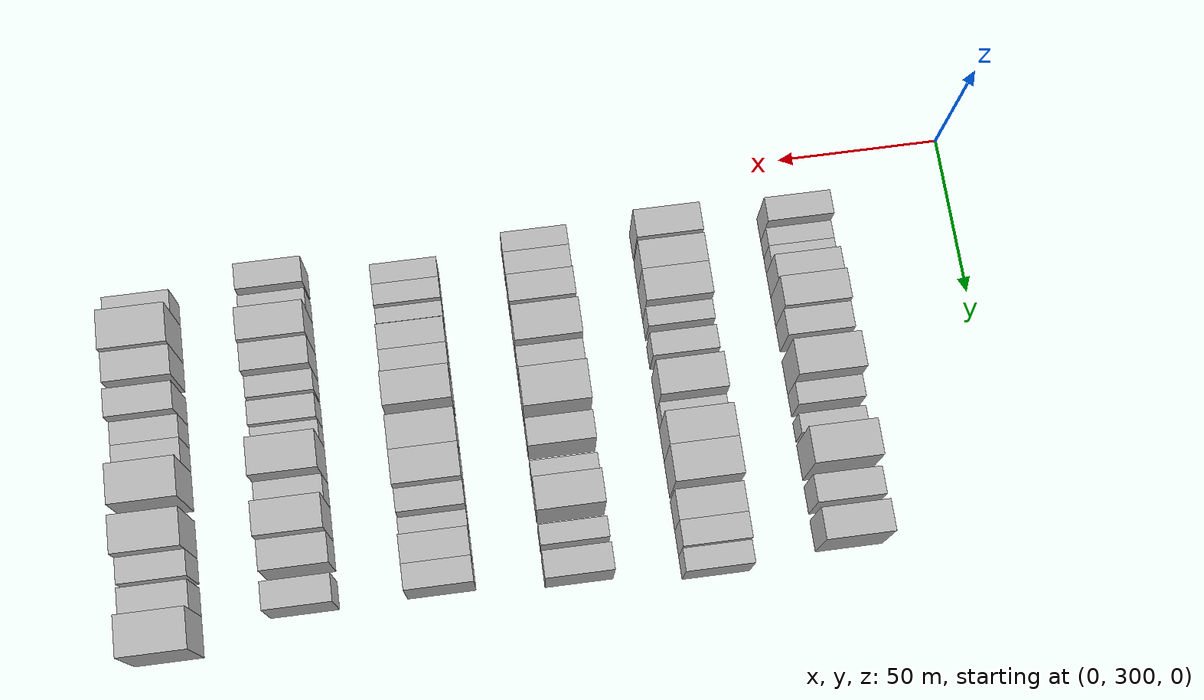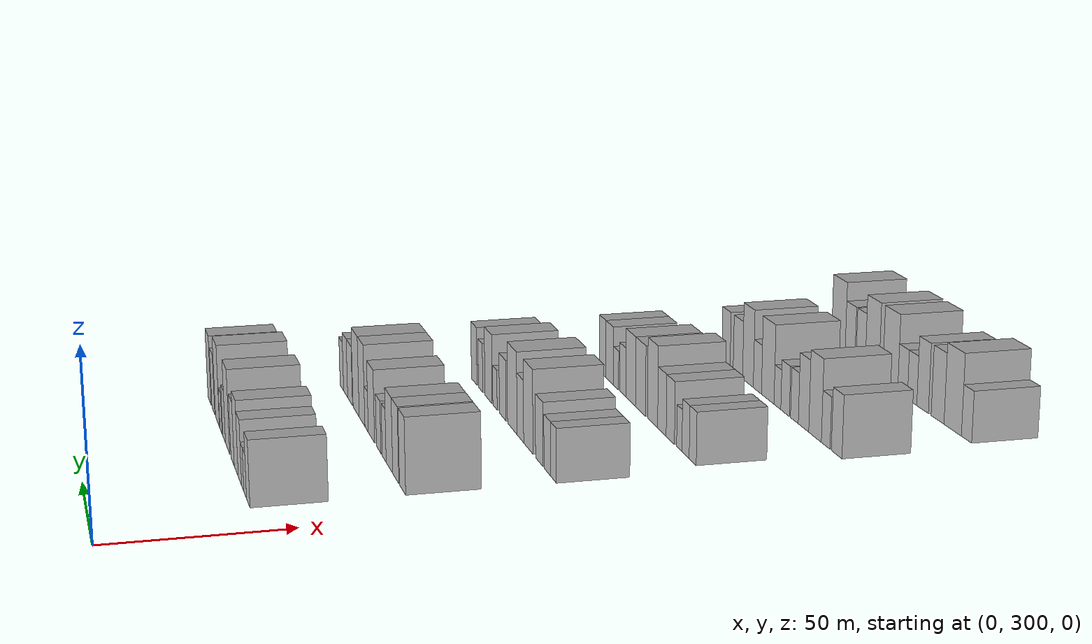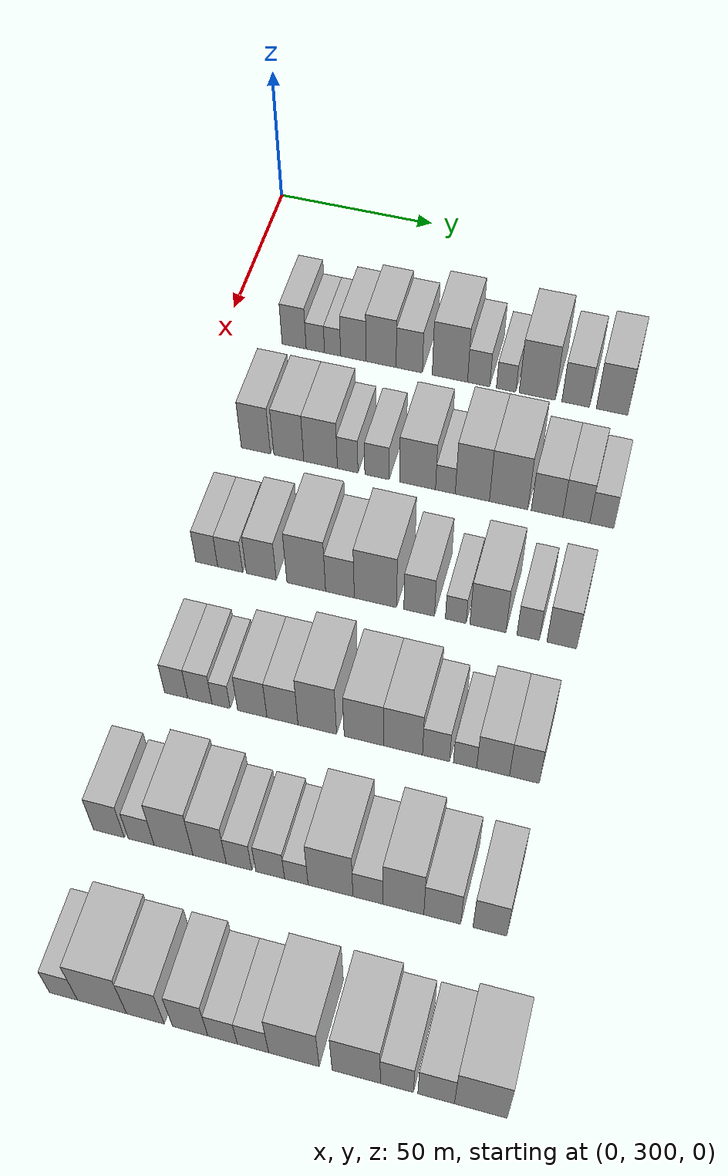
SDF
<sdf version="1.6">
 <world name="default">
  <model name="building_114">
   <static>1</static>
   <pose>50.0000 322.1395 0 0.000000 0.000000 0.000000</pose>
   <link name="link">
    <pose>0 0 9.00 0 0 0</pose>
    <collision name="collision"><geometry><box><size>20.0000 7.5076 18.0000</size></box></geometry></collision>
    <visual name="visual">
     <cast_shadows>0</cast_shadows>
     <geometry><box><size>20.0000 7.5076 18.0000</size></box></geometry>
     <material>
      <script>
       <uri>model://HANNAS_wall/materials/scripts</uri>
       <uri>model://HANNAS_wall/materials/textures</uri>
       <name>vrc/HANNAS_wall</name>
      </script>
     </material>
    </visual>
   </link>
  </model>
  <model name="building_115">
   <static>1</static>
   <pose>50.0000 328.7523 0 0.000000 0.000000 0.000000</pose>
   <link name="link">
    <pose>0 0 6.00 0 0 0</pose>
    <collision name="collision"><geometry><box><size>20.0000 5.7179 12.0000</size></box></geometry></collision>
    <visual name="visual">
     <cast_shadows>0</cast_shadows>
     <geometry><box><size>20.0000 5.7179 12.0000</size></box></geometry>
     <material>
      <script>
       <uri>model://HANNAS_wall/materials/scripts</uri>
       <uri>model://HANNAS_wall/materials/textures</uri>
       <name>vrc/HANNAS_wall</name>
      </script>
     </material>
    </visual>
   </link>
  </model>
  <model name="building_116">
   <static>1</static>
   <pose>50.0000 334.1139 0 0.000000 0.000000 0.000000</pose>
   <link name="link">
    <pose>0 0 6.00 0 0 0</pose>
    <collision name="collision"><geometry><box><size>20.0000 5.0053 12.0000</size></box></geometry></collision>
    <visual name="visual">
     <cast_shadows>0</cast_shadows>
     <geometry><box><size>20.0000 5.0053 12.0000</size></box></geometry>
     <material>
      <script>
       <uri>model://HANNAS_wall/materials/scripts</uri>
       <uri>model://HANNAS_wall/materials/textures</uri>
       <name>vrc/HANNAS_wall</name>
      </script>
     </material>
    </visual>
   </link>
  </model>
  <model name="building_117">
   <static>1</static>
   <pose>50.0000 340.5503 0 0.000000 0.000000 0.000000</pose>
   <link name="link">
    <pose>0 0 9.00 0 0 0</pose>
    <collision name="collision"><geometry><box><size>20.0000 7.8675 18.0000</size></box></geometry></collision>
    <visual name="visual">
     <cast_shadows>0</cast_shadows>
     <geometry><box><size>20.0000 7.8675 18.0000</size></box></geometry>
     <material>
      <script>
       <uri>model://HANNAS_wall/materials/scripts</uri>
       <uri>model://HANNAS_wall/materials/textures</uri>
       <name>vrc/HANNAS_wall</name>
      </script>
     </material>
    </visual>
   </link>
  </model>
  <model name="building_118">
   <static>1</static>
   <pose>50.0000 349.1118 0 0.000000 0.000000 0.000000</pose>
   <link name="link">
    <pose>0 0 10.50 0 0 0</pose>
    <collision name="collision"><geometry><box><size>20.0000 9.2555 21.0000</size></box></geometry></collision>
    <visual name="visual">
     <cast_shadows>0</cast_shadows>
     <geometry><box><size>20.0000 9.2555 21.0000</size></box></geometry>
     <material>
      <script>
       <uri>model://HANNAS_wall/materials/scripts</uri>
       <uri>model://HANNAS_wall/materials/textures</uri>
       <name>vrc/HANNAS_wall</name>
      </script>
     </material>
    </visual>
   </link>
  </model>
  <model name="building_119">
   <static>1</static>
   <pose>50.0000 357.7633 0 0.000000 0.000000 0.000000</pose>
   <link name="link">
    <pose>0 0 9.00 0 0 0</pose>
    <collision name="collision"><geometry><box><size>20.0000 8.0475 18.0000</size></box></geometry></collision>
    <visual name="visual">
     <cast_shadows>0</cast_shadows>
     <geometry><box><size>20.0000 8.0475 18.0000</size></box></geometry>
     <material>
      <script>
       <uri>model://HANNAS_wall/materials/scripts</uri>
       <uri>model://HANNAS_wall/materials/textures</uri>
       <name>vrc/HANNAS_wall</name>
      </script>
     </material>
    </visual>
   </link>
  </model>
  <model name="building_120">
   <static>1</static>
   <pose>50.0000 370.1448 0 0.000000 0.000000 0.000000</pose>
   <link name="link">
    <pose>0 0 12.00 0 0 0</pose>
    <collision name="collision"><geometry><box><size>20.0000 10.7154 24.0000</size></box></geometry></collision>
    <visual name="visual">
     <cast_shadows>0</cast_shadows>
     <geometry><box><size>20.0000 10.7154 24.0000</size></box></geometry>
     <material>
      <script>
       <uri>model://HANNAS_wall/materials/scripts</uri>
       <uri>model://HANNAS_wall/materials/textures</uri>
       <name>vrc/HANNAS_wall</name>
      </script>
     </material>
    </visual>
   </link>
  </model>
  <model name="building_121">
   <static>1</static>
   <pose>50.0000 378.8619 0 0.000000 0.000000 0.000000</pose>
   <link name="link">
    <pose>0 0 7.50 0 0 0</pose>
    <collision name="collision"><geometry><box><size>20.0000 6.7188 15.0000</size></box></geometry></collision>
    <visual name="visual">
     <cast_shadows>0</cast_shadows>
     <geometry><box><size>20.0000 6.7188 15.0000</size></box></geometry>
     <material>
      <script>
       <uri>model://HANNAS_wall/materials/scripts</uri>
       <uri>model://HANNAS_wall/materials/textures</uri>
       <name>vrc/HANNAS_wall</name>
      </script>
     </material>
    </visual>
   </link>
  </model>
  <model name="building_122">
   <static>1</static>
   <pose>50.0000 387.1422 0 0.000000 0.000000 0.000000</pose>
   <link name="link">
    <pose>0 0 6.00 0 0 0</pose>
    <collision name="collision"><geometry><box><size>20.0000 5.8417 12.0000</size></box></geometry></collision>
    <visual name="visual">
     <cast_shadows>0</cast_shadows>
     <geometry><box><size>20.0000 5.8417 12.0000</size></box></geometry>
     <material>
      <script>
       <uri>model://HANNAS_wall/materials/scripts</uri>
       <uri>model://HANNAS_wall/materials/textures</uri>
       <name>vrc/HANNAS_wall</name>
      </script>
     </material>
    </visual>
   </link>
  </model>
  <model name="building_123">
   <static>1</static>
   <pose>50.0000 396.4474 0 0.000000 0.000000 0.000000</pose>
   <link name="link">
    <pose>0 0 12.00 0 0 0</pose>
    <collision name="collision"><geometry><box><size>20.0000 10.7687 24.0000</size></box></geometry></collision>
    <visual name="visual">
     <cast_shadows>0</cast_shadows>
     <geometry><box><size>20.0000 10.7687 24.0000</size></box></geometry>
     <material>
      <script>
       <uri>model://HANNAS_wall/materials/scripts</uri>
       <uri>model://HANNAS_wall/materials/textures</uri>
       <name>vrc/HANNAS_wall</name>
      </script>
     </material>
    </visual>
   </link>
  </model>
  <model name="building_124">
   <static>1</static>
   <pose>50.0000 407.9338 0 0.000000 0.000000 0.000000</pose>
   <link name="link">
    <pose>0 0 9.00 0 0 0</pose>
    <collision name="collision"><geometry><box><size>20.0000 8.2042 18.0000</size></box></geometry></collision>
    <visual name="visual">
     <cast_shadows>0</cast_shadows>
     <geometry><box><size>20.0000 8.2042 18.0000</size></box></geometry>
     <material>
      <script>
       <uri>model://HANNAS_wall/materials/scripts</uri>
       <uri>model://HANNAS_wall/materials/textures</uri>
       <name>vrc/HANNAS_wall</name>
      </script>
     </material>
    </visual>
   </link>
  </model>
  <model name="building_125">
   <static>1</static>
   <pose>50.0000 418.6922 0 0.000000 0.000000 0.000000</pose>
   <link name="link">
    <pose>0 0 10.50 0 0 0</pose>
    <collision name="collision"><geometry><box><size>20.0000 9.3125 21.0000</size></box></geometry></collision>
    <visual name="visual">
     <cast_shadows>0</cast_shadows>
     <geometry><box><size>20.0000 9.3125 21.0000</size></box></geometry>
     <material>
      <script>
       <uri>model://HANNAS_wall/materials/scripts</uri>
       <uri>model://HANNAS_wall/materials/textures</uri>
       <name>vrc/HANNAS_wall</name>
      </script>
     </material>
    </visual>
   </link>
  </model>
  <model name="building_244">
   <static>1</static>
   <pose>90.0000 322.7010 0 0.000000 0.000000 0.000000</pose>
   <link name="link">
    <pose>0 0 10.50 0 0 0</pose>
    <collision name="collision"><geometry><box><size>20.0000 8.7238 21.0000</size></box></geometry></collision>
    <visual name="visual">
     <cast_shadows>0</cast_shadows>
     <geometry><box><size>20.0000 8.7238 21.0000</size></box></geometry>
     <material>
      <script>
       <uri>model://HANNAS_wall/materials/scripts</uri>
       <uri>model://HANNAS_wall/materials/textures</uri>
       <name>vrc/HANNAS_wall</name>
      </script>
     </material>
    </visual>
   </link>
  </model>
  <model name="building_245">
   <static>1</static>
   <pose>90.0000 332.5157 0 0.000000 0.000000 0.000000</pose>
   <link name="link">
    <pose>0 0 10.50 0 0 0</pose>
    <collision name="collision"><geometry><box><size>20.0000 8.9057 21.0000</size></box></geometry></collision>
    <visual name="visual">
     <cast_shadows>0</cast_shadows>
     <geometry><box><size>20.0000 8.9057 21.0000</size></box></geometry>
     <material>
      <script>
       <uri>model://HANNAS_wall/materials/scripts</uri>
       <uri>model://HANNAS_wall/materials/textures</uri>
       <name>vrc/HANNAS_wall</name>
      </script>
     </material>
    </visual>
   </link>
  </model>
  <model name="building_246">
   <static>1</static>
   <pose>90.0000 341.9461 0 0.000000 0.000000 0.000000</pose>
   <link name="link">
    <pose>0 0 10.50 0 0 0</pose>
    <collision name="collision"><geometry><box><size>20.0000 9.9551 21.0000</size></box></geometry></collision>
    <visual name="visual">
     <cast_shadows>0</cast_shadows>
     <geometry><box><size>20.0000 9.9551 21.0000</size></box></geometry>
     <material>
      <script>
       <uri>model://HANNAS_wall/materials/scripts</uri>
       <uri>model://HANNAS_wall/materials/textures</uri>
       <name>vrc/HANNAS_wall</name>
      </script>
     </material>
    </visual>
   </link>
  </model>
  <model name="building_247">
   <static>1</static>
   <pose>90.0000 349.9543 0 0.000000 0.000000 0.000000</pose>
   <link name="link">
    <pose>0 0 7.50 0 0 0</pose>
    <collision name="collision"><geometry><box><size>20.0000 6.0612 15.0000</size></box></geometry></collision>
    <visual name="visual">
     <cast_shadows>0</cast_shadows>
     <geometry><box><size>20.0000 6.0612 15.0000</size></box></geometry>
     <material>
      <script>
       <uri>model://HANNAS_wall/materials/scripts</uri>
       <uri>model://HANNAS_wall/materials/textures</uri>
       <name>vrc/HANNAS_wall</name>
      </script>
     </material>
    </visual>
   </link>
  </model>
  <model name="building_248">
   <static>1</static>
   <pose>90.0000 358.5552 0 0.000000 0.000000 0.000000</pose>
   <link name="link">
    <pose>0 0 7.50 0 0 0</pose>
    <collision name="collision"><geometry><box><size>20.0000 7.1408 15.0000</size></box></geometry></collision>
    <visual name="visual">
     <cast_shadows>0</cast_shadows>
     <geometry><box><size>20.0000 7.1408 15.0000</size></box></geometry>
     <material>
      <script>
       <uri>model://HANNAS_wall/materials/scripts</uri>
       <uri>model://HANNAS_wall/materials/textures</uri>
       <name>vrc/HANNAS_wall</name>
      </script>
     </material>
    </visual>
   </link>
  </model>
  <model name="building_249">
   <static>1</static>
   <pose>90.0000 370.3580 0 0.000000 0.000000 0.000000</pose>
   <link name="link">
    <pose>0 0 10.50 0 0 0</pose>
    <collision name="collision"><geometry><box><size>20.0000 10.4647 21.0000</size></box></geometry></collision>
    <visual name="visual">
     <cast_shadows>0</cast_shadows>
     <geometry><box><size>20.0000 10.4647 21.0000</size></box></geometry>
     <material>
      <script>
       <uri>model://HANNAS_wall/materials/scripts</uri>
       <uri>model://HANNAS_wall/materials/textures</uri>
       <name>vrc/HANNAS_wall</name>
      </script>
     </material>
    </visual>
   </link>
  </model>
  <model name="building_250">
   <static>1</static>
   <pose>90.0000 378.4377 0 0.000000 0.000000 0.000000</pose>
   <link name="link">
    <pose>0 0 6.00 0 0 0</pose>
    <collision name="collision"><geometry><box><size>20.0000 5.6945 12.0000</size></box></geometry></collision>
    <visual name="visual">
     <cast_shadows>0</cast_shadows>
     <geometry><box><size>20.0000 5.6945 12.0000</size></box></geometry>
     <material>
      <script>
       <uri>model://HANNAS_wall/materials/scripts</uri>
       <uri>model://HANNAS_wall/materials/textures</uri>
       <name>vrc/HANNAS_wall</name>
      </script>
     </material>
    </visual>
   </link>
  </model>
  <model name="building_251">
   <static>1</static>
   <pose>90.0000 386.1992 0 0.000000 0.000000 0.000000</pose>
   <link name="link">
    <pose>0 0 12.00 0 0 0</pose>
    <collision name="collision"><geometry><box><size>20.0000 9.8286 24.0000</size></box></geometry></collision>
    <visual name="visual">
     <cast_shadows>0</cast_shadows>
     <geometry><box><size>20.0000 9.8286 24.0000</size></box></geometry>
     <material>
      <script>
       <uri>model://HANNAS_wall/materials/scripts</uri>
       <uri>model://HANNAS_wall/materials/textures</uri>
       <name>vrc/HANNAS_wall</name>
      </script>
     </material>
    </visual>
   </link>
  </model>
  <model name="building_252">
   <static>1</static>
   <pose>90.0000 396.5845 0 0.000000 0.000000 0.000000</pose>
   <link name="link">
    <pose>0 0 12.00 0 0 0</pose>
    <collision name="collision"><geometry><box><size>20.0000 10.9419 24.0000</size></box></geometry></collision>
    <visual name="visual">
     <cast_shadows>0</cast_shadows>
     <geometry><box><size>20.0000 10.9419 24.0000</size></box></geometry>
     <material>
      <script>
       <uri>model://HANNAS_wall/materials/scripts</uri>
       <uri>model://HANNAS_wall/materials/textures</uri>
       <name>vrc/HANNAS_wall</name>
      </script>
     </material>
    </visual>
   </link>
  </model>
  <model name="building_253">
   <static>1</static>
   <pose>90.0000 407.5136 0 0.000000 0.000000 0.000000</pose>
   <link name="link">
    <pose>0 0 9.00 0 0 0</pose>
    <collision name="collision"><geometry><box><size>20.0000 8.9164 18.0000</size></box></geometry></collision>
    <visual name="visual">
     <cast_shadows>0</cast_shadows>
     <geometry><box><size>20.0000 8.9164 18.0000</size></box></geometry>
     <material>
      <script>
       <uri>model://HANNAS_wall/materials/scripts</uri>
       <uri>model://HANNAS_wall/materials/textures</uri>
       <name>vrc/HANNAS_wall</name>
      </script>
     </material>
    </visual>
   </link>
  </model>
  <model name="building_254">
   <static>1</static>
   <pose>90.0000 415.7774 0 0.000000 0.000000 0.000000</pose>
   <link name="link">
    <pose>0 0 9.00 0 0 0</pose>
    <collision name="collision"><geometry><box><size>20.0000 7.6111 18.0000</size></box></geometry></collision>
    <visual name="visual">
     <cast_shadows>0</cast_shadows>
     <geometry><box><size>20.0000 7.6111 18.0000</size></box></geometry>
     <material>
      <script>
       <uri>model://HANNAS_wall/materials/scripts</uri>
       <uri>model://HANNAS_wall/materials/textures</uri>
       <name>vrc/HANNAS_wall</name>
      </script>
     </material>
    </visual>
   </link>
  </model>
  <model name="building_255">
   <static>1</static>
   <pose>90.0000 422.9607 0 0.000000 0.000000 0.000000</pose>
   <link name="link">
    <pose>0 0 7.50 0 0 0</pose>
    <collision name="collision"><geometry><box><size>20.0000 6.7555 15.0000</size></box></geometry></collision>
    <visual name="visual">
     <cast_shadows>0</cast_shadows>
     <geometry><box><size>20.0000 6.7555 15.0000</size></box></geometry>
     <material>
      <script>
       <uri>model://HANNAS_wall/materials/scripts</uri>
       <uri>model://HANNAS_wall/materials/textures</uri>
       <name>vrc/HANNAS_wall</name>
      </script>
     </material>
    </visual>
   </link>
  </model>
  <model name="building_384">
   <static>1</static>
   <pose>130.0000 321.2681 0 0.000000 0.000000 0.000000</pose>
   <link name="link">
    <pose>0 0 7.50 0 0 0</pose>
    <collision name="collision"><geometry><box><size>20.0000 6.2877 15.0000</size></box></geometry></collision>
    <visual name="visual">
     <cast_shadows>0</cast_shadows>
     <geometry><box><size>20.0000 6.2877 15.0000</size></box></geometry>
     <material>
      <script>
       <uri>model://HANNAS_wall/materials/scripts</uri>
       <uri>model://HANNAS_wall/materials/textures</uri>
       <name>vrc/HANNAS_wall</name>
      </script>
     </material>
    </visual>
   </link>
  </model>
  <model name="building_385">
   <static>1</static>
   <pose>130.0000 327.9894 0 0.000000 0.000000 0.000000</pose>
   <link name="link">
    <pose>0 0 7.50 0 0 0</pose>
    <collision name="collision"><geometry><box><size>20.0000 7.1549 15.0000</size></box></geometry></collision>
    <visual name="visual">
     <cast_shadows>0</cast_shadows>
     <geometry><box><size>20.0000 7.1549 15.0000</size></box></geometry>
     <material>
      <script>
       <uri>model://HANNAS_wall/materials/scripts</uri>
       <uri>model://HANNAS_wall/materials/textures</uri>
       <name>vrc/HANNAS_wall</name>
      </script>
     </material>
    </visual>
   </link>
  </model>
  <model name="building_386">
   <static>1</static>
   <pose>130.0000 336.8217 0 0.000000 0.000000 0.000000</pose>
   <link name="link">
    <pose>0 0 9.00 0 0 0</pose>
    <collision name="collision"><geometry><box><size>20.0000 8.5096 18.0000</size></box></geometry></collision>
    <visual name="visual">
     <cast_shadows>0</cast_shadows>
     <geometry><box><size>20.0000 8.5096 18.0000</size></box></geometry>
     <material>
      <script>
       <uri>model://HANNAS_wall/materials/scripts</uri>
       <uri>model://HANNAS_wall/materials/textures</uri>
       <name>vrc/HANNAS_wall</name>
      </script>
     </material>
    </visual>
   </link>
  </model>
  <model name="building_387">
   <static>1</static>
   <pose>130.0000 349.5082 0 0.000000 0.000000 0.000000</pose>
   <link name="link">
    <pose>0 0 12.00 0 0 0</pose>
    <collision name="collision"><geometry><box><size>20.0000 10.8634 24.0000</size></box></geometry></collision>
    <visual name="visual">
     <cast_shadows>0</cast_shadows>
     <geometry><box><size>20.0000 10.8634 24.0000</size></box></geometry>
     <material>
      <script>
       <uri>model://HANNAS_wall/materials/scripts</uri>
       <uri>model://HANNAS_wall/materials/textures</uri>
       <name>vrc/HANNAS_wall</name>
      </script>
     </material>
    </visual>
   </link>
  </model>
  <model name="building_388">
   <static>1</static>
   <pose>130.0000 358.9549 0 0.000000 0.000000 0.000000</pose>
   <link name="link">
    <pose>0 0 9.00 0 0 0</pose>
    <collision name="collision"><geometry><box><size>20.0000 8.0301 18.0000</size></box></geometry></collision>
    <visual name="visual">
     <cast_shadows>0</cast_shadows>
     <geometry><box><size>20.0000 8.0301 18.0000</size></box></geometry>
     <material>
      <script>
       <uri>model://HANNAS_wall/materials/scripts</uri>
       <uri>model://HANNAS_wall/materials/textures</uri>
       <name>vrc/HANNAS_wall</name>
      </script>
     </material>
    </visual>
   </link>
  </model>
  <model name="building_389">
   <static>1</static>
   <pose>130.0000 368.8341 0 0.000000 0.000000 0.000000</pose>
   <link name="link">
    <pose>0 0 12.00 0 0 0</pose>
    <collision name="collision"><geometry><box><size>20.0000 11.7284 24.0000</size></box></geometry></collision>
    <visual name="visual">
     <cast_shadows>0</cast_shadows>
     <geometry><box><size>20.0000 11.7284 24.0000</size></box></geometry>
     <material>
      <script>
       <uri>model://HANNAS_wall/materials/scripts</uri>
       <uri>model://HANNAS_wall/materials/textures</uri>
       <name>vrc/HANNAS_wall</name>
      </script>
     </material>
    </visual>
   </link>
  </model>
  <model name="building_390">
   <static>1</static>
   <pose>130.0000 380.8993 0 0.000000 0.000000 0.000000</pose>
   <link name="link">
    <pose>0 0 9.00 0 0 0</pose>
    <collision name="collision"><geometry><box><size>20.0000 8.4019 18.0000</size></box></geometry></collision>
    <visual name="visual">
     <cast_shadows>0</cast_shadows>
     <geometry><box><size>20.0000 8.4019 18.0000</size></box></geometry>
     <material>
      <script>
       <uri>model://HANNAS_wall/materials/scripts</uri>
       <uri>model://HANNAS_wall/materials/textures</uri>
       <name>vrc/HANNAS_wall</name>
      </script>
     </material>
    </visual>
   </link>
  </model>
  <model name="building_391">
   <static>1</static>
   <pose>130.0000 390.9259 0 0.000000 0.000000 0.000000</pose>
   <link name="link">
    <pose>0 0 6.00 0 0 0</pose>
    <collision name="collision"><geometry><box><size>20.0000 5.6514 12.0000</size></box></geometry></collision>
    <visual name="visual">
     <cast_shadows>0</cast_shadows>
     <geometry><box><size>20.0000 5.6514 12.0000</size></box></geometry>
     <material>
      <script>
       <uri>model://HANNAS_wall/materials/scripts</uri>
       <uri>model://HANNAS_wall/materials/textures</uri>
       <name>vrc/HANNAS_wall</name>
      </script>
     </material>
    </visual>
   </link>
  </model>
  <model name="building_392">
   <static>1</static>
   <pose>130.0000 399.6508 0 0.000000 0.000000 0.000000</pose>
   <link name="link">
    <pose>0 0 10.50 0 0 0</pose>
    <collision name="collision"><geometry><box><size>20.0000 9.7984 21.0000</size></box></geometry></collision>
    <visual name="visual">
     <cast_shadows>0</cast_shadows>
     <geometry><box><size>20.0000 9.7984 21.0000</size></box></geometry>
     <material>
      <script>
       <uri>model://HANNAS_wall/materials/scripts</uri>
       <uri>model://HANNAS_wall/materials/textures</uri>
       <name>vrc/HANNAS_wall</name>
      </script>
     </material>
    </visual>
   </link>
  </model>
  <model name="building_393">
   <static>1</static>
   <pose>130.0000 410.5738 0 0.000000 0.000000 0.000000</pose>
   <link name="link">
    <pose>0 0 7.50 0 0 0</pose>
    <collision name="collision"><geometry><box><size>20.0000 6.0475 15.0000</size></box></geometry></collision>
    <visual name="visual">
     <cast_shadows>0</cast_shadows>
     <geometry><box><size>20.0000 6.0475 15.0000</size></box></geometry>
     <material>
      <script>
       <uri>model://HANNAS_wall/materials/scripts</uri>
       <uri>model://HANNAS_wall/materials/textures</uri>
       <name>vrc/HANNAS_wall</name>
      </script>
     </material>
    </visual>
   </link>
  </model>
  <model name="building_394">
   <static>1</static>
   <pose>130.0000 419.5885 0 0.000000 0.000000 0.000000</pose>
   <link name="link">
    <pose>0 0 9.00 0 0 0</pose>
    <collision name="collision"><geometry><box><size>20.0000 7.9820 18.0000</size></box></geometry></collision>
    <visual name="visual">
     <cast_shadows>0</cast_shadows>
     <geometry><box><size>20.0000 7.9820 18.0000</size></box></geometry>
     <material>
      <script>
       <uri>model://HANNAS_wall/materials/scripts</uri>
       <uri>model://HANNAS_wall/materials/textures</uri>
       <name>vrc/HANNAS_wall</name>
      </script>
     </material>
    </visual>
   </link>
  </model>
  <model name="building_526">
   <static>1</static>
   <pose>170.0000 326.3682 0 0.000000 0.000000 0.000000</pose>
   <link name="link">
    <pose>0 0 7.50 0 0 0</pose>
    <collision name="collision"><geometry><box><size>20.0000 6.2740 15.0000</size></box></geometry></collision>
    <visual name="visual">
     <cast_shadows>0</cast_shadows>
     <geometry><box><size>20.0000 6.2740 15.0000</size></box></geometry>
     <material>
      <script>
       <uri>model://HANNAS_wall/materials/scripts</uri>
       <uri>model://HANNAS_wall/materials/textures</uri>
       <name>vrc/HANNAS_wall</name>
      </script>
     </material>
    </visual>
   </link>
  </model>
  <model name="building_527">
   <static>1</static>
   <pose>170.0000 332.7920 0 0.000000 0.000000 0.000000</pose>
   <link name="link">
    <pose>0 0 7.50 0 0 0</pose>
    <collision name="collision"><geometry><box><size>20.0000 6.5738 15.0000</size></box></geometry></collision>
    <visual name="visual">
     <cast_shadows>0</cast_shadows>
     <geometry><box><size>20.0000 6.5738 15.0000</size></box></geometry>
     <material>
      <script>
       <uri>model://HANNAS_wall/materials/scripts</uri>
       <uri>model://HANNAS_wall/materials/textures</uri>
       <name>vrc/HANNAS_wall</name>
      </script>
     </material>
    </visual>
   </link>
  </model>
  <model name="building_528">
   <static>1</static>
   <pose>170.0000 338.5341 0 0.000000 0.000000 0.000000</pose>
   <link name="link">
    <pose>0 0 6.00 0 0 0</pose>
    <collision name="collision"><geometry><box><size>20.0000 4.9103 12.0000</size></box></geometry></collision>
    <visual name="visual">
     <cast_shadows>0</cast_shadows>
     <geometry><box><size>20.0000 4.9103 12.0000</size></box></geometry>
     <material>
      <script>
       <uri>model://HANNAS_wall/materials/scripts</uri>
       <uri>model://HANNAS_wall/materials/textures</uri>
       <name>vrc/HANNAS_wall</name>
      </script>
     </material>
    </visual>
   </link>
  </model>
  <model name="building_529">
   <static>1</static>
   <pose>170.0000 346.9237 0 0.000000 0.000000 0.000000</pose>
   <link name="link">
    <pose>0 0 9.00 0 0 0</pose>
    <collision name="collision"><geometry><box><size>20.0000 7.8689 18.0000</size></box></geometry></collision>
    <visual name="visual">
     <cast_shadows>0</cast_shadows>
     <geometry><box><size>20.0000 7.8689 18.0000</size></box></geometry>
     <material>
      <script>
       <uri>model://HANNAS_wall/materials/scripts</uri>
       <uri>model://HANNAS_wall/materials/textures</uri>
       <name>vrc/HANNAS_wall</name>
      </script>
     </material>
    </visual>
   </link>
  </model>
  <model name="building_530">
   <static>1</static>
   <pose>170.0000 355.0026 0 0.000000 0.000000 0.000000</pose>
   <link name="link">
    <pose>0 0 9.00 0 0 0</pose>
    <collision name="collision"><geometry><box><size>20.0000 8.2888 18.0000</size></box></geometry></collision>
    <visual name="visual">
     <cast_shadows>0</cast_shadows>
     <geometry><box><size>20.0000 8.2888 18.0000</size></box></geometry>
     <material>
      <script>
       <uri>model://HANNAS_wall/materials/scripts</uri>
       <uri>model://HANNAS_wall/materials/textures</uri>
       <name>vrc/HANNAS_wall</name>
      </script>
     </material>
    </visual>
   </link>
  </model>
  <model name="building_531">
   <static>1</static>
   <pose>170.0000 364.2505 0 0.000000 0.000000 0.000000</pose>
   <link name="link">
    <pose>0 0 12.00 0 0 0</pose>
    <collision name="collision"><geometry><box><size>20.0000 10.2071 24.0000</size></box></geometry></collision>
    <visual name="visual">
     <cast_shadows>0</cast_shadows>
     <geometry><box><size>20.0000 10.2071 24.0000</size></box></geometry>
     <material>
      <script>
       <uri>model://HANNAS_wall/materials/scripts</uri>
       <uri>model://HANNAS_wall/materials/textures</uri>
       <name>vrc/HANNAS_wall</name>
      </script>
     </material>
    </visual>
   </link>
  </model>
  <model name="building_532">
   <static>1</static>
   <pose>170.0000 376.4822 0 0.000000 0.000000 0.000000</pose>
   <link name="link">
    <pose>0 0 10.50 0 0 0</pose>
    <collision name="collision"><geometry><box><size>20.0000 10.2563 21.0000</size></box></geometry></collision>
    <visual name="visual">
     <cast_shadows>0</cast_shadows>
     <geometry><box><size>20.0000 10.2563 21.0000</size></box></geometry>
     <material>
      <script>
       <uri>model://HANNAS_wall/materials/scripts</uri>
       <uri>model://HANNAS_wall/materials/textures</uri>
       <name>vrc/HANNAS_wall</name>
      </script>
     </material>
    </visual>
   </link>
  </model>
  <model name="building_533">
   <static>1</static>
   <pose>170.0000 386.7189 0 0.000000 0.000000 0.000000</pose>
   <link name="link">
    <pose>0 0 10.50 0 0 0</pose>
    <collision name="collision"><geometry><box><size>20.0000 10.2171 21.0000</size></box></geometry></collision>
    <visual name="visual">
     <cast_shadows>0</cast_shadows>
     <geometry><box><size>20.0000 10.2171 21.0000</size></box></geometry>
     <material>
      <script>
       <uri>model://HANNAS_wall/materials/scripts</uri>
       <uri>model://HANNAS_wall/materials/textures</uri>
       <name>vrc/HANNAS_wall</name>
      </script>
     </material>
    </visual>
   </link>
  </model>
  <model name="building_534">
   <static>1</static>
   <pose>170.0000 395.3276 0 0.000000 0.000000 0.000000</pose>
   <link name="link">
    <pose>0 0 7.50 0 0 0</pose>
    <collision name="collision"><geometry><box><size>20.0000 7.0003 15.0000</size></box></geometry></collision>
    <visual name="visual">
     <cast_shadows>0</cast_shadows>
     <geometry><box><size>20.0000 7.0003 15.0000</size></box></geometry>
     <material>
      <script>
       <uri>model://HANNAS_wall/materials/scripts</uri>
       <uri>model://HANNAS_wall/materials/textures</uri>
       <name>vrc/HANNAS_wall</name>
      </script>
     </material>
    </visual>
   </link>
  </model>
  <model name="building_535">
   <static>1</static>
   <pose>170.0000 402.8141 0 0.000000 0.000000 0.000000</pose>
   <link name="link">
    <pose>0 0 6.00 0 0 0</pose>
    <collision name="collision"><geometry><box><size>20.0000 5.9727 12.0000</size></box></geometry></collision>
    <visual name="visual">
     <cast_shadows>0</cast_shadows>
     <geometry><box><size>20.0000 5.9727 12.0000</size></box></geometry>
     <material>
      <script>
       <uri>model://HANNAS_wall/materials/scripts</uri>
       <uri>model://HANNAS_wall/materials/textures</uri>
       <name>vrc/HANNAS_wall</name>
      </script>
     </material>
    </visual>
   </link>
  </model>
  <model name="building_536">
   <static>1</static>
   <pose>170.0000 410.0138 0 0.000000 0.000000 0.000000</pose>
   <link name="link">
    <pose>0 0 9.00 0 0 0</pose>
    <collision name="collision"><geometry><box><size>20.0000 8.4268 18.0000</size></box></geometry></collision>
    <visual name="visual">
     <cast_shadows>0</cast_shadows>
     <geometry><box><size>20.0000 8.4268 18.0000</size></box></geometry>
     <material>
      <script>
       <uri>model://HANNAS_wall/materials/scripts</uri>
       <uri>model://HANNAS_wall/materials/textures</uri>
       <name>vrc/HANNAS_wall</name>
      </script>
     </material>
    </visual>
   </link>
  </model>
  <model name="building_537">
   <static>1</static>
   <pose>170.0000 418.0060 0 0.000000 0.000000 0.000000</pose>
   <link name="link">
    <pose>0 0 9.00 0 0 0</pose>
    <collision name="collision"><geometry><box><size>20.0000 7.5576 18.0000</size></box></geometry></collision>
    <visual name="visual">
     <cast_shadows>0</cast_shadows>
     <geometry><box><size>20.0000 7.5576 18.0000</size></box></geometry>
     <material>
      <script>
       <uri>model://HANNAS_wall/materials/scripts</uri>
       <uri>model://HANNAS_wall/materials/textures</uri>
       <name>vrc/HANNAS_wall</name>
      </script>
     </material>
    </visual>
   </link>
  </model>
  <model name="building_669">
   <static>1</static>
   <pose>210.0000 322.9020 0 0.000000 0.000000 0.000000</pose>
   <link name="link">
    <pose>0 0 9.00 0 0 0</pose>
    <collision name="collision"><geometry><box><size>20.0000 7.9877 18.0000</size></box></geometry></collision>
    <visual name="visual">
     <cast_shadows>0</cast_shadows>
     <geometry><box><size>20.0000 7.9877 18.0000</size></box></geometry>
     <material>
      <script>
       <uri>model://HANNAS_wall/materials/scripts</uri>
       <uri>model://HANNAS_wall/materials/textures</uri>
       <name>vrc/HANNAS_wall</name>
      </script>
     </material>
    </visual>
   </link>
  </model>
  <model name="building_670">
   <static>1</static>
   <pose>210.0000 331.2368 0 0.000000 0.000000 0.000000</pose>
   <link name="link">
    <pose>0 0 7.50 0 0 0</pose>
    <collision name="collision"><geometry><box><size>20.0000 6.6820 15.0000</size></box></geometry></collision>
    <visual name="visual">
     <cast_shadows>0</cast_shadows>
     <geometry><box><size>20.0000 6.6820 15.0000</size></box></geometry>
     <material>
      <script>
       <uri>model://HANNAS_wall/materials/scripts</uri>
       <uri>model://HANNAS_wall/materials/textures</uri>
       <name>vrc/HANNAS_wall</name>
      </script>
     </material>
    </visual>
   </link>
  </model>
  <model name="building_671">
   <static>1</static>
   <pose>210.0000 339.5620 0 0.000000 0.000000 0.000000</pose>
   <link name="link">
    <pose>0 0 12.00 0 0 0</pose>
    <collision name="collision"><geometry><box><size>20.0000 9.9683 24.0000</size></box></geometry></collision>
    <visual name="visual">
     <cast_shadows>0</cast_shadows>
     <geometry><box><size>20.0000 9.9683 24.0000</size></box></geometry>
     <material>
      <script>
       <uri>model://HANNAS_wall/materials/scripts</uri>
       <uri>model://HANNAS_wall/materials/textures</uri>
       <name>vrc/HANNAS_wall</name>
      </script>
     </material>
    </visual>
   </link>
  </model>
  <model name="building_672">
   <static>1</static>
   <pose>210.0000 348.7844 0 0.000000 0.000000 0.000000</pose>
   <link name="link">
    <pose>0 0 10.50 0 0 0</pose>
    <collision name="collision"><geometry><box><size>20.0000 8.4764 21.0000</size></box></geometry></collision>
    <visual name="visual">
     <cast_shadows>0</cast_shadows>
     <geometry><box><size>20.0000 8.4764 21.0000</size></box></geometry>
     <material>
      <script>
       <uri>model://HANNAS_wall/materials/scripts</uri>
       <uri>model://HANNAS_wall/materials/textures</uri>
       <name>vrc/HANNAS_wall</name>
      </script>
     </material>
    </visual>
   </link>
  </model>
  <model name="building_673">
   <static>1</static>
   <pose>210.0000 356.2468 0 0.000000 0.000000 0.000000</pose>
   <link name="link">
    <pose>0 0 7.50 0 0 0</pose>
    <collision name="collision"><geometry><box><size>20.0000 6.4484 15.0000</size></box></geometry></collision>
    <visual name="visual">
     <cast_shadows>0</cast_shadows>
     <geometry><box><size>20.0000 6.4484 15.0000</size></box></geometry>
     <material>
      <script>
       <uri>model://HANNAS_wall/materials/scripts</uri>
       <uri>model://HANNAS_wall/materials/textures</uri>
       <name>vrc/HANNAS_wall</name>
      </script>
     </material>
    </visual>
   </link>
  </model>
  <model name="building_674">
   <static>1</static>
   <pose>210.0000 364.0902 0 0.000000 0.000000 0.000000</pose>
   <link name="link">
    <pose>0 0 7.50 0 0 0</pose>
    <collision name="collision"><geometry><box><size>20.0000 7.2383 15.0000</size></box></geometry></collision>
    <visual name="visual">
     <cast_shadows>0</cast_shadows>
     <geometry><box><size>20.0000 7.2383 15.0000</size></box></geometry>
     <material>
      <script>
       <uri>model://HANNAS_wall/materials/scripts</uri>
       <uri>model://HANNAS_wall/materials/textures</uri>
       <name>vrc/HANNAS_wall</name>
      </script>
     </material>
    </visual>
   </link>
  </model>
  <model name="building_675">
   <static>1</static>
   <pose>210.0000 370.6480 0 0.000000 0.000000 0.000000</pose>
   <link name="link">
    <pose>0 0 6.00 0 0 0</pose>
    <collision name="collision"><geometry><box><size>20.0000 5.8774 12.0000</size></box></geometry></collision>
    <visual name="visual">
     <cast_shadows>0</cast_shadows>
     <geometry><box><size>20.0000 5.8774 12.0000</size></box></geometry>
     <material>
      <script>
       <uri>model://HANNAS_wall/materials/scripts</uri>
       <uri>model://HANNAS_wall/materials/textures</uri>
       <name>vrc/HANNAS_wall</name>
      </script>
     </material>
    </visual>
   </link>
  </model>
  <model name="building_676">
   <static>1</static>
   <pose>210.0000 379.1584 0 0.000000 0.000000 0.000000</pose>
   <link name="link">
    <pose>0 0 12.00 0 0 0</pose>
    <collision name="collision"><geometry><box><size>20.0000 11.1432 24.0000</size></box></geometry></collision>
    <visual name="visual">
     <cast_shadows>0</cast_shadows>
     <geometry><box><size>20.0000 11.1432 24.0000</size></box></geometry>
     <material>
      <script>
       <uri>model://HANNAS_wall/materials/scripts</uri>
       <uri>model://HANNAS_wall/materials/textures</uri>
       <name>vrc/HANNAS_wall</name>
      </script>
     </material>
    </visual>
   </link>
  </model>
  <model name="building_677">
   <static>1</static>
   <pose>210.0000 388.4220 0 0.000000 0.000000 0.000000</pose>
   <link name="link">
    <pose>0 0 7.50 0 0 0</pose>
    <collision name="collision"><geometry><box><size>20.0000 7.3841 15.0000</size></box></geometry></collision>
    <visual name="visual">
     <cast_shadows>0</cast_shadows>
     <geometry><box><size>20.0000 7.3841 15.0000</size></box></geometry>
     <material>
      <script>
       <uri>model://HANNAS_wall/materials/scripts</uri>
       <uri>model://HANNAS_wall/materials/textures</uri>
       <name>vrc/HANNAS_wall</name>
      </script>
     </material>
    </visual>
   </link>
  </model>
  <model name="building_678">
   <static>1</static>
   <pose>210.0000 397.1305 0 0.000000 0.000000 0.000000</pose>
   <link name="link">
    <pose>0 0 12.00 0 0 0</pose>
    <collision name="collision"><geometry><box><size>20.0000 10.0329 24.0000</size></box></geometry></collision>
    <visual name="visual">
     <cast_shadows>0</cast_shadows>
     <geometry><box><size>20.0000 10.0329 24.0000</size></box></geometry>
     <material>
      <script>
       <uri>model://HANNAS_wall/materials/scripts</uri>
       <uri>model://HANNAS_wall/materials/textures</uri>
       <name>vrc/HANNAS_wall</name>
      </script>
     </material>
    </visual>
   </link>
  </model>
  <model name="building_679">
   <static>1</static>
   <pose>210.0000 406.6253 0 0.000000 0.000000 0.000000</pose>
   <link name="link">
    <pose>0 0 9.00 0 0 0</pose>
    <collision name="collision"><geometry><box><size>20.0000 8.9566 18.0000</size></box></geometry></collision>
    <visual name="visual">
     <cast_shadows>0</cast_shadows>
     <geometry><box><size>20.0000 8.9566 18.0000</size></box></geometry>
     <material>
      <script>
       <uri>model://HANNAS_wall/materials/scripts</uri>
       <uri>model://HANNAS_wall/materials/textures</uri>
       <name>vrc/HANNAS_wall</name>
      </script>
     </material>
    </visual>
   </link>
  </model>
  <model name="building_680">
   <static>1</static>
   <pose>210.0000 418.1857 0 0.000000 0.000000 0.000000</pose>
   <link name="link">
    <pose>0 0 9.00 0 0 0</pose>
    <collision name="collision"><geometry><box><size>20.0000 8.1641 18.0000</size></box></geometry></collision>
    <visual name="visual">
     <cast_shadows>0</cast_shadows>
     <geometry><box><size>20.0000 8.1641 18.0000</size></box></geometry>
     <material>
      <script>
       <uri>model://HANNAS_wall/materials/scripts</uri>
       <uri>model://HANNAS_wall/materials/textures</uri>
       <name>vrc/HANNAS_wall</name>
      </script>
     </material>
    </visual>
   </link>
  </model>
  <model name="building_809">
   <static>1</static>
   <pose>250.0000 326.7461 0 0.000000 0.000000 0.000000</pose>
   <link name="link">
    <pose>0 0 7.50 0 0 0</pose>
    <collision name="collision"><geometry><box><size>20.0000 6.8762 15.0000</size></box></geometry></collision>
    <visual name="visual">
     <cast_shadows>0</cast_shadows>
     <geometry><box><size>20.0000 6.8762 15.0000</size></box></geometry>
     <material>
      <script>
       <uri>model://HANNAS_wall/materials/scripts</uri>
       <uri>model://HANNAS_wall/materials/textures</uri>
       <name>vrc/HANNAS_wall</name>
      </script>
     </material>
    </visual>
   </link>
  </model>
  <model name="building_810">
   <static>1</static>
   <pose>250.0000 336.1639 0 0.000000 0.000000 0.000000</pose>
   <link name="link">
    <pose>0 0 12.00 0 0 0</pose>
    <collision name="collision"><geometry><box><size>20.0000 11.9593 24.0000</size></box></geometry></collision>
    <visual name="visual">
     <cast_shadows>0</cast_shadows>
     <geometry><box><size>20.0000 11.9593 24.0000</size></box></geometry>
     <material>
      <script>
       <uri>model://HANNAS_wall/materials/scripts</uri>
       <uri>model://HANNAS_wall/materials/textures</uri>
       <name>vrc/HANNAS_wall</name>
      </script>
     </material>
    </visual>
   </link>
  </model>
  <model name="building_811">
   <static>1</static>
   <pose>250.0000 346.6917 0 0.000000 0.000000 0.000000</pose>
   <link name="link">
    <pose>0 0 10.50 0 0 0</pose>
    <collision name="collision"><geometry><box><size>20.0000 9.0962 21.0000</size></box></geometry></collision>
    <visual name="visual">
     <cast_shadows>0</cast_shadows>
     <geometry><box><size>20.0000 9.0962 21.0000</size></box></geometry>
     <material>
      <script>
       <uri>model://HANNAS_wall/materials/scripts</uri>
       <uri>model://HANNAS_wall/materials/textures</uri>
       <name>vrc/HANNAS_wall</name>
      </script>
     </material>
    </visual>
   </link>
  </model>
  <model name="building_812">
   <static>1</static>
   <pose>250.0000 357.4687 0 0.000000 0.000000 0.000000</pose>
   <link name="link">
    <pose>0 0 10.50 0 0 0</pose>
    <collision name="collision"><geometry><box><size>20.0000 8.4580 21.0000</size></box></geometry></collision>
    <visual name="visual">
     <cast_shadows>0</cast_shadows>
     <geometry><box><size>20.0000 8.4580 21.0000</size></box></geometry>
     <material>
      <script>
       <uri>model://HANNAS_wall/materials/scripts</uri>
       <uri>model://HANNAS_wall/materials/textures</uri>
       <name>vrc/HANNAS_wall</name>
      </script>
     </material>
    </visual>
   </link>
  </model>
  <model name="building_813">
   <static>1</static>
   <pose>250.0000 365.2037 0 0.000000 0.000000 0.000000</pose>
   <link name="link">
    <pose>0 0 7.50 0 0 0</pose>
    <collision name="collision"><geometry><box><size>20.0000 7.0120 15.0000</size></box></geometry></collision>
    <visual name="visual">
     <cast_shadows>0</cast_shadows>
     <geometry><box><size>20.0000 7.0120 15.0000</size></box></geometry>
     <material>
      <script>
       <uri>model://HANNAS_wall/materials/scripts</uri>
       <uri>model://HANNAS_wall/materials/textures</uri>
       <name>vrc/HANNAS_wall</name>
      </script>
     </material>
    </visual>
   </link>
  </model>
  <model name="building_814">
   <static>1</static>
   <pose>250.0000 372.4073 0 0.000000 0.000000 0.000000</pose>
   <link name="link">
    <pose>0 0 7.50 0 0 0</pose>
    <collision name="collision"><geometry><box><size>20.0000 7.3950 15.0000</size></box></geometry></collision>
    <visual name="visual">
     <cast_shadows>0</cast_shadows>
     <geometry><box><size>20.0000 7.3950 15.0000</size></box></geometry>
     <material>
      <script>
       <uri>model://HANNAS_wall/materials/scripts</uri>
       <uri>model://HANNAS_wall/materials/textures</uri>
       <name>vrc/HANNAS_wall</name>
      </script>
     </material>
    </visual>
   </link>
  </model>
  <model name="building_815">
   <static>1</static>
   <pose>250.0000 382.0366 0 0.000000 0.000000 0.000000</pose>
   <link name="link">
    <pose>0 0 12.00 0 0 0</pose>
    <collision name="collision"><geometry><box><size>20.0000 11.8637 24.0000</size></box></geometry></collision>
    <visual name="visual">
     <cast_shadows>0</cast_shadows>
     <geometry><box><size>20.0000 11.8637 24.0000</size></box></geometry>
     <material>
      <script>
       <uri>model://HANNAS_wall/materials/scripts</uri>
       <uri>model://HANNAS_wall/materials/textures</uri>
       <name>vrc/HANNAS_wall</name>
      </script>
     </material>
    </visual>
   </link>
  </model>
  <model name="building_816">
   <static>1</static>
   <pose>250.0000 396.5433 0 0.000000 0.000000 0.000000</pose>
   <link name="link">
    <pose>0 0 12.00 0 0 0</pose>
    <collision name="collision"><geometry><box><size>20.0000 11.1498 24.0000</size></box></geometry></collision>
    <visual name="visual">
     <cast_shadows>0</cast_shadows>
     <geometry><box><size>20.0000 11.1498 24.0000</size></box></geometry>
     <material>
      <script>
       <uri>model://HANNAS_wall/materials/scripts</uri>
       <uri>model://HANNAS_wall/materials/textures</uri>
       <name>vrc/HANNAS_wall</name>
      </script>
     </material>
    </visual>
   </link>
  </model>
  <model name="building_817">
   <static>1</static>
   <pose>250.0000 405.9414 0 0.000000 0.000000 0.000000</pose>
   <link name="link">
    <pose>0 0 9.00 0 0 0</pose>
    <collision name="collision"><geometry><box><size>20.0000 7.6465 18.0000</size></box></geometry></collision>
    <visual name="visual">
     <cast_shadows>0</cast_shadows>
     <geometry><box><size>20.0000 7.6465 18.0000</size></box></geometry>
     <material>
      <script>
       <uri>model://HANNAS_wall/materials/scripts</uri>
       <uri>model://HANNAS_wall/materials/textures</uri>
       <name>vrc/HANNAS_wall</name>
      </script>
     </material>
    </visual>
   </link>
  </model>
  <model name="building_818">
   <static>1</static>
   <pose>250.0000 414.9428 0 0.000000 0.000000 0.000000</pose>
   <link name="link">
    <pose>0 0 9.00 0 0 0</pose>
    <collision name="collision"><geometry><box><size>20.0000 8.3563 18.0000</size></box></geometry></collision>
    <visual name="visual">
     <cast_shadows>0</cast_shadows>
     <geometry><box><size>20.0000 8.3563 18.0000</size></box></geometry>
     <material>
      <script>
       <uri>model://HANNAS_wall/materials/scripts</uri>
       <uri>model://HANNAS_wall/materials/textures</uri>
       <name>vrc/HANNAS_wall</name>
      </script>
     </material>
    </visual>
   </link>
  </model>
  <model name="building_819">
   <static>1</static>
   <pose>250.0000 425.0973 0 0.000000 0.000000 0.000000</pose>
   <link name="link">
    <pose>0 0 12.00 0 0 0</pose>
    <collision name="collision"><geometry><box><size>20.0000 11.9528 24.0000</size></box></geometry></collision>
    <visual name="visual">
     <cast_shadows>0</cast_shadows>
     <geometry><box><size>20.0000 11.9528 24.0000</size></box></geometry>
     <material>
      <script>
       <uri>model://HANNAS_wall/materials/scripts</uri>
       <uri>model://HANNAS_wall/materials/textures</uri>
       <name>vrc/HANNAS_wall</name>
      </script>
     </material>
    </visual>
   </link>
  </model>
 </world>
</sdf>
